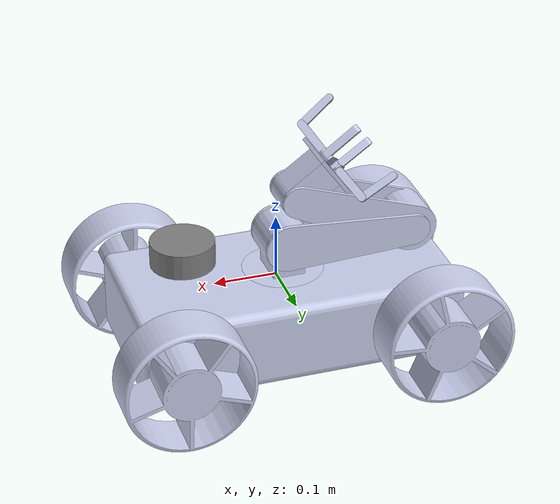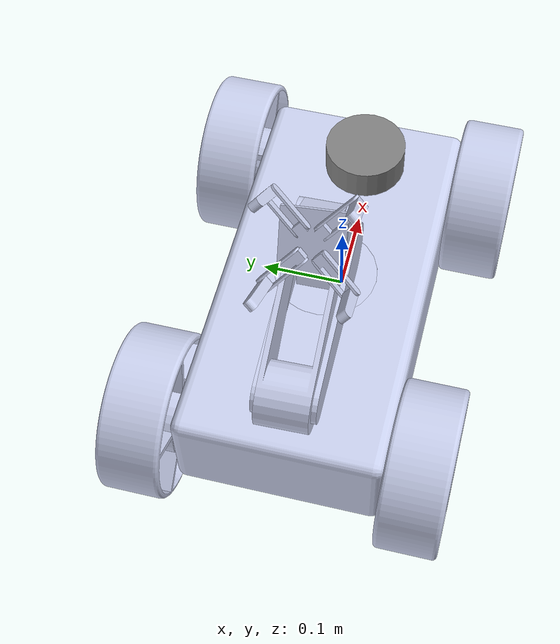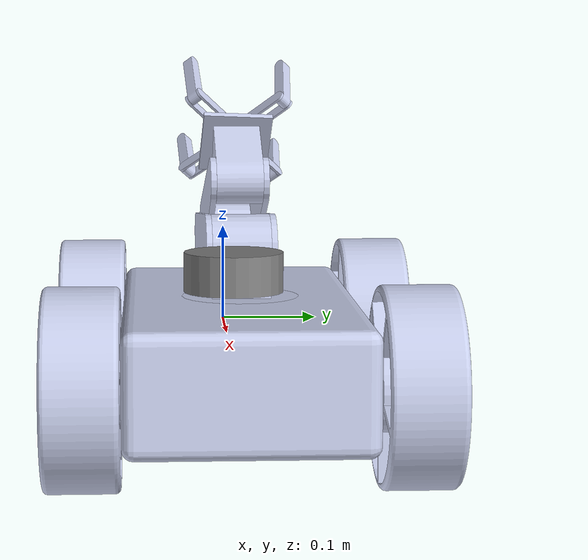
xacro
<?xml version="1.0" ?>
<robot
  name="project2" xmlns:xacro= "http://ros.org/wiki/xacro">
  <xacro:macro name="body_color">
    <visual>
    <material>
        <ambient>1.0 0.0 0.0 1</ambient>
        <diffuse>0.8 0.558823529411765 0.1 1</diffuse>
        <specular>0.1 0.1 0.1 1</specular>
        <emissive>0 0 0 0</emissive>
    </material>
    </visual>
</xacro:macro>
<xacro:macro name="wheels">
    <visual>
    <material>
        <ambient>0.38 0.3984375 0.4140625 1</ambient>
        <diffuse>0.8 0.558823529411765 0.1 1</diffuse>
        <specular>0.1 0.1 0.1 1</specular>
        <emissive>0 0 0 0</emissive>
    </material>
    </visual>
</xacro:macro>
<xacro:macro name="arm">
    <visual>
    <material>
        <ambient>0 0.0 0.7 1</ambient>
        <diffuse>0.8 0.558823529411765 0.1 1</diffuse>
        <specular>0.1 0.1 0.1 1</specular>
        <emissive>0 0 0 0</emissive>
    </material>
    </visual>
</xacro:macro>
  <link name="dummy_link"></link>
  <link
    name="robot_base">
    <inertial>
      <origin
        xyz="-0.00445867504272959 0.0188596582001737 -0.0409170414895302"
        rpy="0 0 0" />
      <mass
        value="16.8716303622031" />
      <inertia
        ixx="0.129093700861499"
        ixy="1.96405764644591E-17"
        ixz="1.6784440571546E-18"
        iyy="0.407112985368653"
        iyz="3.94346039118866E-18"
        izz="0.494014292102768" />
    </inertial>
    <visual>
      <origin
        xyz="0 0 0"
        rpy="0 0 0" />
      <geometry>
        <mesh
          filename="package://project2/meshes/robot_base.STL" />
      </geometry>
      <material
        name="">
        <color
          rgba="0.792156862745098 0.819607843137255 0.933333333333333 1" />
      </material>
    </visual>
    <collision>
      <origin
        xyz="0 0 0"
        rpy="0 0 0" />
      <geometry>
        <mesh
          filename="package://project2/meshes/robot_base.STL" />
      </geometry>
    </collision>
  </link>
  <joint name="dummy_joint" type="fixed">
    <origin rpy="0 0 0" xyz="0 0 0" />
    <parent link="dummy_link"/>
    <child link="robot_base"/>
  </joint>
  <link name="laser_frame">
    <visual>
      <geometry>
          <cylinder radius="0.05" length="0.04"/>
      </geometry>
      <material name="grey">
        <color rgba="0.5 0.5 0.5 1"/>
      </material>
    </visual>
    <collision>
      <geometry>
        <cylinder radius="0.05" length="0.04"/>
      </geometry>
    </collision>
  </link>
  <joint name="laser_joint" type="fixed">
        <parent link="robot_base"/>
        <child link="laser_frame"/>
        <origin xyz= "0.15 0.005 0.07" rpy="0 0 0"/>
  </joint>
  <link
    name="front_wheel_left">
    <inertial>
      <origin
        xyz="-2.77555756156289E-17 5.55111512312578E-17 0.0426611529567505"
        rpy="0 0 0" />
      <mass
        value="0.65704188155931" />
      <inertia
        ixx="0.00220253962614407"
        ixy="-1.44334414212133E-18"
        ixz="-3.87340877149962E-19"
        iyy="0.00220253962614408"
        iyz="-4.49359142360589E-19"
        izz="0.00375659739665088" />
    </inertial>
    <visual>
      <origin
        xyz="0 0 0"
        rpy="0 0 0" />
      <geometry>
        <mesh
          filename="package://project2/meshes/front_wheel_left.STL" />
      </geometry>
      <material
        name="">
        <color
          rgba="0.792156862745098 0.819607843137255 0.933333333333333 1" />
      </material>
    </visual>
    <collision>
      <origin
        xyz="0 0 0"
        rpy="0 0 0" />
      <geometry>
        <mesh
          filename="package://project2/meshes/front_wheel_left.STL" />
      </geometry>
      <surface>
        <friction>
          <ode>
            <mu>1.0</mu>
            <mu2>1.0</mu2>
          </ode>
        </friction>
        <contact>
          <ode>
            <min_depth>0.0</min_depth>
          </ode>
        </contact>
      </surface>
    </collision>
  </link>
  <joint
    name="front_wheel_joint_left"
    type="continuous">
    <origin
      xyz="0.19874 0.14586 -0.039948"
      rpy="-1.5708 -0.031821 0" />
    <parent
      link="robot_base" />
    <child
      link="front_wheel_left" />
    <axis
      xyz="0 0 1" />
    <limit
      lower="-1000"
      upper="1000"
      effort="1000"
      velocity="1000" />
  </joint>
  <link
    name="front_wheel_right">
    <inertial>
      <origin
        xyz="-1.38777878078145E-17 2.77555756156289E-17 0.0426611529567505"
        rpy="0 0 0" />
      <mass
        value="0.65704188155931" />
      <inertia
        ixx="0.00220253962614408"
        ixy="-7.04731412115578E-19"
        ixz="-1.8918058268492E-19"
        iyy="0.00220253962614408"
        iyz="6.06473269987636E-20"
        izz="0.00375659739665089" />
    </inertial>
    <visual>
      <origin
        xyz="0 0 0"
        rpy="0 0 0" />
      <geometry>
        <mesh
          filename="package://project2/meshes/front_wheel_right.STL" />
      </geometry>
      <material
        name="">
        <color
          rgba="0.792156862745098 0.819607843137255 0.933333333333333 1" />
      </material>
    </visual>
    <collision>
      <origin
        xyz="0 0 0"
        rpy="0 0 0" />
      <geometry>
        <mesh
          filename="package://project2/meshes/front_wheel_right.STL" />
      </geometry>
      <surface>
        <friction>
          <ode>
            <mu>1.0</mu>
            <mu2>1.0</mu2>
          </ode>
        </friction>
        <contact>
          <ode>
            <min_depth>0.0</min_depth>
          </ode>
        </contact>
      </surface>
    </collision>
  </link>
  <joint
    name="front_wheel_joint_right"
    type="continuous">
    <origin
      xyz="0.19874 -0.10814 -0.039948"
      rpy="1.5708 1.2051 0" />
    <parent
      link="robot_base" />
    <child
      link="front_wheel_right" />
    <axis
      xyz="0 0 1" />
    <limit
      lower="-1000"
      upper="1000"
      effort="1000"
      velocity="1000" />
  </joint>
  <link
    name="back_wheel_left">
    <inertial>
      <origin
        xyz="-5.55111512312578E-17 4.16333634234434E-17 0.0426611529567505"
        rpy="0 0 0" />
      <mass
        value="0.65704188155931" />
      <inertia
        ixx="0.00220253962614408"
        ixy="-8.13151629364128E-19"
        ixz="-6.30645659214809E-19"
        iyy="0.00220253962614408"
        iyz="4.3643535614371E-20"
        izz="0.00375659739665089" />
    </inertial>
    <visual>
      <origin
        xyz="0 0 0"
        rpy="0 0 0" />
      <geometry>
        <mesh
          filename="package://project2/meshes/back_wheel_left.STL" />
      </geometry>
      <material
        name="">
        <color
          rgba="0.792156862745098 0.819607843137255 0.933333333333333 1" />
      </material>
    </visual>
    <collision>
      <origin
        xyz="0 0 0"
        rpy="0 0 0" />
      <geometry>
        <mesh
          filename="package://project2/meshes/back_wheel_left.STL" />
      </geometry>
      <surface>
        <friction>
          <ode>
            <mu>1.0</mu>
            <mu2>1.0</mu2>
          </ode>
        </friction>
        <contact>
          <ode>
            <min_depth>0.0</min_depth>
          </ode>
        </contact>
      </surface>
    </collision>
  </link>
  <joint
    name="back_wheel_joint_left"
    type="continuous">
    <origin
      xyz="-0.20766 0.14586 -0.039948"
      rpy="-1.5708 -0.39275 0" />
    <parent
      link="robot_base" />
    <child
      link="back_wheel_left" />
    <axis
      xyz="0 0 1" />
    <limit
      lower="-1000"
      upper="1000"
      effort="1000"
      velocity="1000" />
  </joint>
  <link
    name="back_wheel_right">
    <inertial>
      <origin
        xyz="2.77555756156289E-17 4.16333634234434E-17 0.0426611529567505"
        rpy="0 0 0" />
      <mass
        value="0.65704188155931" />
      <inertia
        ixx="0.00220253962614408"
        ixy="-3.25260651745651E-19"
        ixz="-2.95974706149586E-19"
        iyy="0.00220253962614408"
        iyz="-2.28275685637239E-20"
        izz="0.00375659739665089" />
    </inertial>
    <visual>
      <origin
        xyz="0 0 0"
        rpy="0 0 0" />
      <geometry>
        <mesh
          filename="package://project2/meshes/back_wheel_right.STL" />
      </geometry>
      <material
        name="">
        <color
          rgba="0.792156862745098 0.819607843137255 0.933333333333333 1" />
      </material>
    </visual>
    <collision>
      <origin
        xyz="0 0 0"
        rpy="0 0 0" />
      <geometry>
        <mesh
          filename="package://project2/meshes/back_wheel_right.STL" />
      </geometry>
      <surface>
        <friction>
          <ode>
            <mu>1.0</mu>
            <mu2>1.0</mu2>
          </ode>
        </friction>
        <contact>
          <ode>
            <min_depth>0.003</min_depth>
          </ode>
        </contact>
      </surface>
    </collision>
  </link>
  <joint
    name="back_wheel_joint_right"
    type="continuous">
    <origin
      xyz="-0.20766 -0.10814 -0.039948"
      rpy="1.5708 -0.60421 0" />
    <parent
      link="robot_base" />
    <child
      link="back_wheel_right" />
    <axis
      xyz="0 0 1" />
    <limit
      lower="-1000"
      upper="1000"
      effort="1000"
      velocity="1000" />
  </joint>
  <link
    name="link1">
    <inertial>
      <origin
        xyz="-2.25514051876985E-17 0.03600782607744 -3.46944695195361E-18"
        rpy="0 0 0" />
      <mass
        value="0.589945280222916" />
      <inertia
        ixx="0.00105677270741217"
        ixy="2.89426230364179E-19"
        ixz="2.71050543121376E-20"
        iyy="0.000851877314188274"
        iyz="1.38722560223904E-19"
        izz="0.00107780891255203" />
    </inertial>
    <visual>
      <origin
        xyz="0 0 0"
        rpy="0 0 0" />
      <geometry>
        <mesh
          filename="package://project2/meshes/link1.STL" />
      </geometry>
      <material
        name="">
        <color
          rgba="0.792156862745098 0.819607843137255 0.933333333333333 1" />
      </material>
    </visual>
    <collision>
      <origin
        xyz="0 0 0"
        rpy="0 0 0" />
      <geometry>
        <mesh
          filename="package://project2/meshes/link1.STL" />
      </geometry>
    </collision>
  </link>
  <joint
    name="link1_joint"
    type="revolute">
    <origin
      xyz="-0.0044587 0.01886 0"
      rpy="1.5708 0 0.023044" />
    <parent
      link="robot_base" />
    <child
      link="link1" />
    <axis
      xyz="0 1 0" />
    <limit
      lower="0"
      upper="6.30"
      effort="100"
      velocity="1000" />
  </joint>
  <link
    name="link2">
    <inertial>
      <origin
        xyz="-4.16333634234434E-17 0.0928294353929606 -1.83880688453542E-16"
        rpy="0 0 0" />
      <mass
        value="0.350491004551609" />
      <inertia
        ixx="0.00291260560811244"
        ixy="9.70976449468327E-19"
        ixz="8.36445035413622E-21"
        iyy="0.000383234871793968"
        iyz="1.18584612615602E-19"
        izz="0.00269534620476411" />
    </inertial>
    <visual>
      <origin
        xyz="0 0 0"
        rpy="0 0 0" />
      <geometry>
        <mesh
          filename="package://project2/meshes/link2.STL" />
      </geometry>
      <material
        name="">
        <color
          rgba="0.792156862745098 0.819607843137255 0.933333333333333 1" />
      </material>
    </visual>
    <collision>
      <origin
        xyz="0 0 0"
        rpy="0 0 0" />
      <geometry>
        <mesh
          filename="package://project2/meshes/link2.STL" />
      </geometry>
    </collision>
  </link>
  <joint
    name="link2_joint"
    type="revolute">
    <origin
      xyz="0 0.074352 0"
      rpy="0 0 1.5988" />
    <parent
      link="link1" />
    <child
      link="link2" />
    <axis
      xyz="0 0 1" />
    <limit
      lower="-3.14"
      upper="0"
      effort="100"
      velocity="1000" />
  </joint>
  <link
    name="link3">
    <inertial>
      <origin
        xyz="-2.77555756156289E-17 0.0699792691095642 -1.70002900645727E-16"
        rpy="0 0 0" />
      <mass
        value="0.422892808736732" />
      <inertia
        ixx="0.00324007797113907"
        ixy="1.8766411993113E-19"
        ixz="-5.0821976835258E-20"
        iyy="0.000359224069633167"
        iyz="-5.6327690992411E-20"
        izz="0.00318609153230274" />
    </inertial>
    <visual>
      <origin
        xyz="0 0 0"
        rpy="0 0 0" />
      <geometry>
        <mesh
          filename="package://project2/meshes/link3.STL" />
      </geometry>
      <material
        name="">
        <color
          rgba="0.792156862745098 0.819607843137255 0.933333333333333 1" />
      </material>
    </visual>
    <collision>
      <origin
        xyz="0 0 0"
        rpy="0 0 0" />
      <geometry>
        <mesh
          filename="package://project2/meshes/link3.STL" />
      </geometry>
    </collision>
  </link>
  <joint
    name="link3_joint"
    type="revolute">
    <origin
      xyz="0 0.2032 0"
      rpy="0 0 -2.7698" />
    <parent
      link="link2" />
    <child
      link="link3" />
    <axis
      xyz="0 0 1" />
    <limit
      lower="0"
      upper="5.54"
      effort="100"
      velocity="1000" />
  </joint>
  <link
    name="end_effector">
    <inertial>
      <origin
        xyz="1.38777878078145E-17 0.0247268481304791 -1.28022592527088E-15"
        rpy="0 0 0" />
      <mass
        value="0.12847712258504" />
      <inertia
        ixx="9.9693448180975E-05"
        ixy="-7.48763890483001E-21"
        ixz="2.32934060494933E-21"
        iyy="6.689234340781E-05"
        iyz="-1.75759336555267E-20"
        izz="0.00010412627843435" />
    </inertial>
    <visual>
      <origin
        xyz="0 0 0"
        rpy="0 0 0" />
      <geometry>
        <mesh
          filename="package://project2/meshes/end_effector.STL" />
      </geometry>
      <material
        name="">
        <color
          rgba="0.792156862745098 0.819607843137255 0.933333333333333 1" />
      </material>
    </visual>
    <collision>
      <origin
        xyz="0 0 0"
        rpy="0 0 0" />
      <geometry>
        <mesh
          filename="package://project2/meshes/end_effector.STL" />
      </geometry>
    </collision>
  </link>
  <joint
    name="end_effector_joint"
    type="revolute">
    <origin
      xyz="0 0.2032 0"
      rpy="0 0 2.1266" />
    <parent
      link="link3" />
    <child
      link="end_effector" />
    <axis
      xyz="0 0 1" />
    <limit
      lower="-4.30"
      upper="0"
      effort="100"
      velocity="1000" />
  </joint>
  <link
    name="pick_and_place_base">
    <inertial>
      <origin
        xyz="3.0001167517224E-06 -0.00325946155890486 -5.62586325303371E-07"
        rpy="0 0 0" />
      <mass
        value="0.0680935878476142" />
      <inertia
        ixx="2.72981957338164E-05"
        ixy="-3.25986432301156E-09"
        ixz="-3.12703011228737E-09"
        iyy="4.20006833769534E-05"
        iyz="6.11699189455091E-10"
        izz="2.75426122566326E-05" />
    </inertial>
    <visual>
      <origin
        xyz="0 0 0"
        rpy="0 0 0" />
      <geometry>
        <mesh
          filename="package://project2/meshes/pick_and_place_base.STL" />
      </geometry>
      <material
        name="">
        <color
          rgba="0.792156862745098 0.819607843137255 0.933333333333333 1" />
      </material>
    </visual>
    <collision>
      <origin
        xyz="0 0 0"
        rpy="0 0 0" />
      <geometry>
        <mesh
          filename="package://project2/meshes/pick_and_place_base.STL" />
      </geometry>
    </collision>
  </link>
  <joint
    name="pick_and_place_base_joint"
    type="fixed">
    <origin
      xyz="0 0.0635 0"
      rpy="-3.1416 -0.051896 3.1416" />
    <parent
      link="end_effector" />
    <child
      link="pick_and_place_base" />
    <axis
      xyz="0 0 0" />
  </joint>
  <link
    name="pick_and_place_1">
    <inertial>
      <origin
        xyz="-5.55111512312578E-17 0.0254 0.00635120298274981"
        rpy="0 0 0" />
      <mass
        value="0.00699277188922917" />
      <inertia
        ixx="3.44048849627947E-06"
        ixy="6.82424005356248E-23"
        ixz="-2.77932685817817E-22"
        iyy="3.62897016488178E-07"
        iyz="5.69100261436483E-22"
        izz="3.23554230251274E-06" />
    </inertial>
    <visual>
      <origin
        xyz="0 0 0"
        rpy="0 0 0" />
      <geometry>
        <mesh
          filename="package://project2/meshes/pick_and_place_1.STL" />
      </geometry>
      <material
        name="">
        <color
          rgba="0.792156862745098 0.819607843137255 0.933333333333333 1" />
      </material>
    </visual>
    <collision>
      <origin
        xyz="0 0 0"
        rpy="0 0 0" />
      <geometry>
        <mesh
          filename="package://project2/meshes/pick_and_place_1.STL" />
      </geometry>
    </collision>
  </link>
  <joint
    name="pick_and_place_joint1"
    type="revolute">
    <origin
      xyz="0.020897 0.0127 0.0079144"
      rpy="0.7768 -0.013419 -1.5571" />
    <parent
      link="pick_and_place_base" />
    <child
      link="pick_and_place_1" />
    <axis
      xyz="0 0 1" />
    <limit
      lower="0"
      upper="3.14"
      effort="100"
      velocity="1000" />
  </joint>
  <link
    name="sub1">
    <inertial>
      <origin
        xyz="2.77555756156289E-17 0.0325432063212394 0.00609600000000005"
        rpy="0 0 0" />
      <mass
        value="0.00843640254616532" />
      <inertia
        ixx="2.50311136362693E-06"
        ixy="-9.93443915676186E-22"
        ixz="0"
        iyy="2.07102631014701E-07"
        iyz="1.40537986072759E-21"
        izz="2.50120934312097E-06" />
    </inertial>
    <visual>
      <origin
        xyz="0 0 0"
        rpy="0 0 0" />
      <geometry>
        <mesh
          filename="package://project2/meshes/sub1.STL" />
      </geometry>
      <material
        name="">
        <color
          rgba="0.792156862745098 0.819607843137255 0.933333333333333 1" />
      </material>
    </visual>
    <collision>
      <origin
        xyz="0 0 0"
        rpy="0 0 0" />
      <geometry>
        <mesh
          filename="package://project2/meshes/sub1.STL" />
      </geometry>
    </collision>
  </link>
  <joint
    name="sub_joint1"
    type="fixed">
    <origin
      xyz="0 0.0508 0.000254"
      rpy="0 0 1.4669" />
    <parent
      link="pick_and_place_1" />
    <child
      link="sub1" />
    <axis
      xyz="0 0 1" />
  </joint>
  <link
    name="pick_and_place_2">
    <inertial>
      <origin
        xyz="0 0.0254 0.0063512029827499"
        rpy="0 0 0" />
      <mass
        value="0.00699277188922917" />
      <inertia
        ixx="3.44048849627948E-06"
        ixy="1.19858470758934E-21"
        ixz="-1.58818677610181E-22"
        iyy="3.6289701648818E-07"
        iyz="-1.32348898008484E-22"
        izz="3.23554230251274E-06" />
    </inertial>
    <visual>
      <origin
        xyz="0 0 0"
        rpy="0 0 0" />
      <geometry>
        <mesh
          filename="package://project2/meshes/pick_and_place_2.STL" />
      </geometry>
      <material
        name="">
        <color
          rgba="0.792156862745098 0.819607843137255 0.933333333333333 1" />
      </material>
    </visual>
    <collision>
      <origin
        xyz="0 0 0"
        rpy="0 0 0" />
      <geometry>
        <mesh
          filename="package://project2/meshes/pick_and_place_2.STL" />
      </geometry>
    </collision>
  </link>
  <joint
    name="pick_and_place_joint2"
    type="revolute">
    <origin
      xyz="-0.020974 0.0127 0.0079148"
      rpy="0.77688 0.01005 1.5606" />
    <parent
      link="pick_and_place_base" />
    <child
      link="pick_and_place_2" />
    <axis
      xyz="0 0 1" />
    <limit
      lower="-3.14"
      upper="0"
      effort="100"
      velocity="1000" />
  </joint>
  <link
    name="sub2">
    <inertial>
      <origin
        xyz="8.32667268468867E-17 0.0325432063212396 0.00609599999999998"
        rpy="0 0 0" />
      <mass
        value="0.00843640254616531" />
      <inertia
        ixx="2.50311136362693E-06"
        ixy="-1.51456770158459E-21"
        ixz="2.11758236813575E-22"
        iyy="2.071026310147E-07"
        iyz="-5.97637992569562E-22"
        izz="2.50120934312096E-06" />
    </inertial>
    <visual>
      <origin
        xyz="0 0 0"
        rpy="0 0 0" />
      <geometry>
        <mesh
          filename="package://project2/meshes/sub2.STL" />
      </geometry>
      <material
        name="">
        <color
          rgba="0.792156862745098 0.819607843137255 0.933333333333333 1" />
      </material>
    </visual>
    <collision>
      <origin
        xyz="0 0 0"
        rpy="0 0 0" />
      <geometry>
        <mesh
          filename="package://project2/meshes/sub2.STL" />
      </geometry>
    </collision>
  </link>
  <joint
    name="sub_joint2"
    type="fixed">
    <origin
      xyz="0 0.0508 0.000254"
      rpy="0 0 -1.4685" />
    <parent
      link="pick_and_place_2" />
    <child
      link="sub2" />
    <axis
      xyz="0 0 1" />
    <limit
      lower="0"
      upper="0"
      effort="0"
      velocity="0" />
  </joint>
  <link
    name="pick_and_place_3">
    <inertial>
      <origin
        xyz="-2.77555756156289E-17 0.0254 0.00635120298274977"
        rpy="0 0 0" />
      <mass
        value="0.00699277188922917" />
      <inertia
        ixx="3.44048849627947E-06"
        ixy="2.78553071277232E-21"
        ixz="-6.20385459414771E-22"
        iyy="3.62897016488179E-07"
        iyz="1.93229391092387E-21"
        izz="3.23554230251273E-06" />
    </inertial>
    <visual>
      <origin
        xyz="0 0 0"
        rpy="0 0 0" />
      <geometry>
        <mesh
          filename="package://project2/meshes/pick_and_place_3.STL" />
      </geometry>
      <material
        name="">
        <color
          rgba="0.792156862745098 0.819607843137255 0.933333333333333 1" />
      </material>
    </visual>
    <collision>
      <origin
        xyz="0 0 0"
        rpy="0 0 0" />
      <geometry>
        <mesh
          filename="package://project2/meshes/pick_and_place_3.STL" />
      </geometry>
    </collision>
  </link>
  <joint
    name="pick_and_place_joint3"
    type="revolute">
    <origin
      xyz="-0.01175 0.0127 -0.01737"
      rpy="-0.7853 -0.014183 1.5566" />
    <parent
      link="pick_and_place_base" />
    <child
      link="pick_and_place_3" />
    <axis
      xyz="0 0 1" />
    <limit
      lower="-3.14"
      upper="0"
      effort="100"
      velocity="1000" />
  </joint>
  <link
    name="sub3">
    <inertial>
      <origin
        xyz="-2.77555756156289E-17 0.0325432063212394 0.006096"
        rpy="0 0 0" />
      <mass
        value="0.00843640254616531" />
      <inertia
        ixx="2.50311136362693E-06"
        ixy="1.45583787809333E-22"
        ixz="1.05879118406788E-22"
        iyy="2.071026310147E-07"
        iyz="-2.58907531729098E-22"
        izz="2.50120934312097E-06" />
    </inertial>
    <visual>
      <origin
        xyz="0 0 0"
        rpy="0 0 0" />
      <geometry>
        <mesh
          filename="package://project2/meshes/sub3.STL" />
      </geometry>
      <material
        name="">
        <color
          rgba="0.792156862745098 0.819607843137255 0.933333333333333 1" />
      </material>
    </visual>
    <collision>
      <origin
        xyz="0 0 0"
        rpy="0 0 0" />
      <geometry>
        <mesh
          filename="package://project2/meshes/sub3.STL" />
      </geometry>
    </collision>
  </link>
  <joint
    name="sub_joint3"
    type="fixed">
    <origin
      xyz="0 0.0508 0.000762"
      rpy="0 0 -1.4684" />
    <parent
      link="pick_and_place_3" />
    <child
      link="sub3" />
    <axis
      xyz="0 0 1" />
  </joint>
  <link
    name="pick_and_place_4">
    <inertial>
      <origin
        xyz="0 0.0254 0.0063512029827499"
        rpy="0 0 0" />
      <mass
        value="0.00699277188922917" />
      <inertia
        ixx="3.44048849627948E-06"
        ixy="-2.36801129858618E-21"
        ixz="-5.16160702233089E-22"
        iyy="3.6289701648818E-07"
        iyz="-1.99846835992811E-21"
        izz="3.23554230251274E-06" />
    </inertial>
    <visual>
      <origin
        xyz="0 0 0"
        rpy="0 0 0" />
      <geometry>
        <mesh
          filename="package://project2/meshes/pick_and_place_4.STL" />
      </geometry>
      <material
        name="">
        <color
          rgba="0.792156862745098 0.819607843137255 0.933333333333333 1" />
      </material>
    </visual>
    <collision>
      <origin
        xyz="0 0 0"
        rpy="0 0 0" />
      <geometry>
        <mesh
          filename="package://project2/meshes/pick_and_place_4.STL" />
      </geometry>
    </collision>
  </link>
  <joint
    name="pick_and_place_joint4"
    type="revolute">
    <origin
      xyz="0.011674 0.0127 -0.017446"
      rpy="-0.78497 0.02926 -1.5415" />
    <parent
      link="pick_and_place_base" />
    <child
      link="pick_and_place_4" />
    <axis
      xyz="0 0 1" />
    <limit
      lower="0"
      upper="3.14"
      effort="100"
      velocity="1000" />
  </joint>
  <link
    name="sub4">
    <inertial>
      <origin
        xyz="-6.93889390390723E-18 0.0325432063212394 0.00609600000000003"
        rpy="0 0 0" />
      <mass
        value="0.00843640254616531" />
      <inertia
        ixx="2.50311136362693E-06"
        ixy="1.11586664633403E-21"
        ixz="2.11758236813575E-22"
        iyy="2.071026310147E-07"
        iyz="1.4475660719678E-21"
        izz="2.50120934312096E-06" />
    </inertial>
    <visual>
      <origin
        xyz="0 0 0"
        rpy="0 0 0" />
      <geometry>
        <mesh
          filename="package://project2/meshes/sub4.STL" />
      </geometry>
      <material
        name="">
        <color
          rgba="0.792156862745098 0.819607843137255 0.933333333333333 1" />
      </material>
    </visual>
    <collision>
      <origin
        xyz="0 0 0"
        rpy="0 0 0" />
      <geometry>
        <mesh
          filename="package://project2/meshes/sub4.STL" />
      </geometry>
    </collision>
  </link>
  <joint
    name="sub_joint4"
    type="fixed">
    <origin
      xyz="0 0.0508 0.000762"
      rpy="0 0 1.4732" />
    <parent
      link="pick_and_place_4" />
    <child
      link="sub4" />
    <axis
      xyz="0 0 1" />
  </joint>

<gazebo reference="robot_base">
    <xacro:body_color />
</gazebo>

<gazebo reference="front_wheel_left">
    <xacro:wheels />
</gazebo>

<gazebo reference="front_wheel_right">
    <xacro:wheels />
</gazebo>

<gazebo reference="back_wheel_left">
    <xacro:wheels />
</gazebo>

<gazebo reference="back_wheel_right">
    <xacro:wheels />
</gazebo>

<gazebo reference="link1">
    <xacro:arm />
</gazebo>

<gazebo reference="link2">
    <xacro:arm />
</gazebo>

<gazebo reference="link3">
    <xacro:arm />
</gazebo>

<gazebo reference="end_effector">
    <xacro:arm />
</gazebo>

<gazebo reference="pick_and_place_base">
    <xacro:wheels />
</gazebo>

<gazebo reference="pick_and_place_1">
    <xacro:wheels />
</gazebo>

<gazebo reference="sub1">
    <xacro:wheels />
</gazebo>

<gazebo reference="pick_and_place_2">
    <xacro:wheels />
</gazebo>

<gazebo reference="sub2">
    <xacro:wheels />
</gazebo>

<gazebo reference="pick_and_place_3">
    <xacro:wheels />
</gazebo>

<gazebo reference="sub3">
    <xacro:wheels />
</gazebo>

<gazebo reference="pick_and_place_4">
    <xacro:wheels />
</gazebo>

<gazebo reference="sub4">
    <xacro:wheels />
</gazebo>

   <ros2_control name="GazeboSystem" type="system">
 <hardware>
     <plugin>gazebo_ros2_control/GazeboSystem</plugin>
 </hardware>
 # Velocity Controllers

 <joint name="front_wheel_joint_left">
     <command_interface name="velocity">
         <param name="min">-1000.0</param>
         <param name="max">1000.0</param>
     </command_interface>
     <state_interface name="position"/>
     <state_interface name="velocity"/>
 </joint>

 <joint name="front_wheel_joint_right">
     <command_interface name="velocity">
         <param name="min">-1000.0</param>
         <param name="max">1000.0</param>
     </command_interface>
     <state_interface name="position"/>
     <state_interface name="velocity"/>
 </joint>

 <joint name="back_wheel_joint_left">
     <command_interface name="velocity">
         <param name="min">-1000.0</param>
         <param name="max">1000.0</param>
     </command_interface>
     <state_interface name="position"/>
     <state_interface name="velocity"/>
 </joint>

 <joint name="back_wheel_joint_right">
     <command_interface name="velocity">
         <param name="min">-1000.0</param>
         <param name="max">1000.0</param>
     </command_interface>
     <state_interface name="position"/>
     <state_interface name="velocity"/>
 </joint>

# Position Controller
 <joint name="link1_joint">
     <command_interface name="position">
         <param name="min">-3.14</param>
         <param name="max">3.14</param>
     </command_interface>
     <state_interface name="position"/>
     <state_interface name="velocity"/>
 </joint>

 <joint name="link1_joint">
     <command_interface name="velocity">
         <param name="min">-1000</param>
         <param name="max">1000</param>
     </command_interface>
     <state_interface name="position"/>
     <state_interface name="velocity"/>
 </joint>

 <joint name="link2_joint">
     <command_interface name="position">
         <param name="min">-3.14</param>
         <param name="max">3.14</param>
     </command_interface>
     <state_interface name="position"/>
     <state_interface name="velocity"/>
 </joint>

 <joint name="link2_joint">
     <command_interface name="velocity">
         <param name="min">-1000</param>
         <param name="max">1000</param>
     </command_interface>
     <state_interface name="position"/>
     <state_interface name="velocity"/>
 </joint>

 <joint name="link3_joint">
     <command_interface name="position">
         <param name="min">-3.14</param>
         <param name="max">3.14</param>
     </command_interface>
     <state_interface name="position"/>
     <state_interface name="velocity"/>
 </joint>

 <joint name="link3_joint">
     <command_interface name="velocity">
         <param name="min">-1000</param>
         <param name="max">1000</param>
     </command_interface>
     <state_interface name="position"/>
     <state_interface name="velocity"/>
 </joint>

 <joint name="end_effector_joint">
     <command_interface name="position">
         <param name="min">-3.14</param>
         <param name="max">3.14</param>
     </command_interface>
     <state_interface name="position"/>
     <state_interface name="velocity"/>
 </joint>

 <joint name="end_effector_joint">
     <command_interface name="velocity">
         <param name="min">-1000</param>
         <param name="max">1000</param>
     </command_interface>
     <state_interface name="position"/>
     <state_interface name="velocity"/>
 </joint>

 <joint name="pick_and_place_joint1">
     <command_interface name="position">
         <param name="min">-3.14</param>
         <param name="max">3.14</param>
     </command_interface>
     <state_interface name="position"/>
     <state_interface name="velocity"/>
 </joint>

 <joint name="pick_and_place_joint1">
     <command_interface name="velocity">
         <param name="min">-1000</param>
         <param name="max">1000</param>
     </command_interface>
     <state_interface name="position"/>
     <state_interface name="velocity"/>
 </joint>

 <joint name="pick_and_place_joint2">
     <command_interface name="position">
         <param name="min">-3.14</param>
         <param name="max">3.14</param>
     </command_interface>
     <state_interface name="position"/>
     <state_interface name="velocity"/>
 </joint>

 <joint name="pick_and_place_joint2">
     <command_interface name="velocity">
         <param name="min">-1000</param>
         <param name="max">1000</param>
     </command_interface>
     <state_interface name="position"/>
     <state_interface name="velocity"/>
 </joint>

 <joint name="pick_and_place_joint3">
     <command_interface name="position">
         <param name="min">-3.14</param>
         <param name="max">3.14</param>
     </command_interface>
     <state_interface name="position"/>
     <state_interface name="velocity"/>
 </joint>

 <joint name="pick_and_place_joint3">
     <command_interface name="velocity">
         <param name="min">-1000</param>
         <param name="max">1000</param>
     </command_interface>
     <state_interface name="position"/>
     <state_interface name="velocity"/>
 </joint>

 <joint name="pick_and_place_joint4">
     <command_interface name="position">
         <param name="min">-3.14</param>
         <param name="max">3.14</param>
     </command_interface>
     <state_interface name="position"/>
     <state_interface name="velocity"/>
 </joint>

 <joint name="pick_and_place_joint4">
     <command_interface name="velocity">
         <param name="min">-1000</param>
         <param name="max">1000</param>
     </command_interface>
     <state_interface name="position"/>
     <state_interface name="velocity"/>
 </joint>

 </ros2_control>

  <gazebo reference="laser_frame">
  <sensor name="lidar" type="ray">
    <pose>0.0 0.0 0.0 0 0 0</pose>
    <always_on>true</always_on>
    <visualize>true</visualize>
    <update_rate>5</update_rate>
    <ray>
      <scan>
        <horizontal>
          <samples>360</samples>
          <resolution>1.00000</resolution>
          <min_angle>0.000000</min_angle>
          <max_angle>6.280000</max_angle>
        </horizontal>
      </scan>
      <range>
        <min>0.120000</min>
        <max>3.5</max>
        <resolution>0.015000</resolution>
      </range>
      <noise>
        <type>gaussian</type>
        <mean>0.0</mean>
        <stddev>0.01</stddev>
      </noise>
    </ray>
    <plugin name="scan" filename="libgazebo_ros_ray_sensor.so">
      <ros>
        <remapping>~/out:=scan</remapping>
      </ros>
      <output_type>sensor_msgs/LaserScan</output_type>
      <frame_name>laser_frame</frame_name>
    </plugin>
  </sensor>
  </gazebo>

 <gazebo>
  <plugin filename="libodometry_plugin.so" name="odometry_plugin">
    <!-- Name of the link for which the odometry is required -->
    <frame>front_wheel_joint_right</frame>
    <!-- Any arbitray name for the world frame -->
    <world_frame>fixed_world</world_frame>
  </plugin>
</gazebo>

  <gazebo>
    <plugin filename="libgazebo_ros2_control.so" name="gazebo_ros2_control">
        <parameters>$(find project2)/config/control.yaml</parameters>
    </plugin>
</gazebo>
<gazebo reference="robot_base">
  <gravity>true</gravity>
  <sensor name="imu_sensor" type="imu">
    <always_on>true</always_on>
    <update_rate>100</update_rate>
    <visualize>true</visualize>
    <topic>__default_topic__</topic>
    <plugin filename="libgazebo_ros_imu_sensor.so" name="imu_plugin">
      <topicName>imu</topicName>
      <bodyName>robot_base</bodyName>
      <updateRateHZ>10.0</updateRateHZ>
      <gaussianNoise>0.0</gaussianNoise>
      <xyzOffset>0 0 0</xyzOffset>
      <rpyOffset>0 0 0</rpyOffset>
      <frameName>robot_base</frameName>
      <initialOrientationAsReference>false</initialOrientationAsReference>
    </plugin>
    <pose>0 0 0 0 0 0</pose>
  </sensor>
</gazebo>

</robot>
